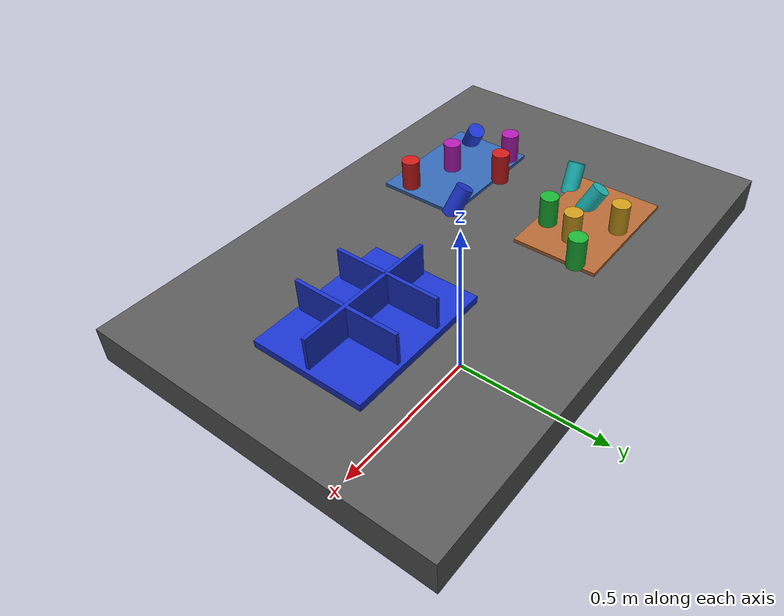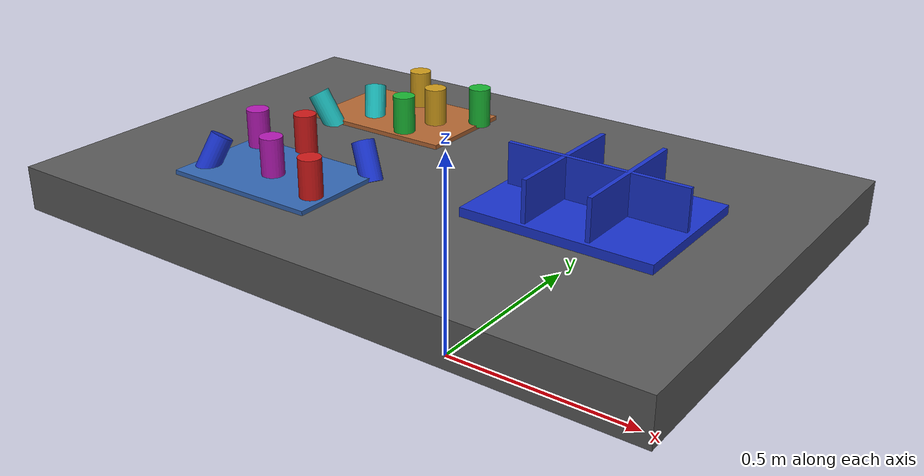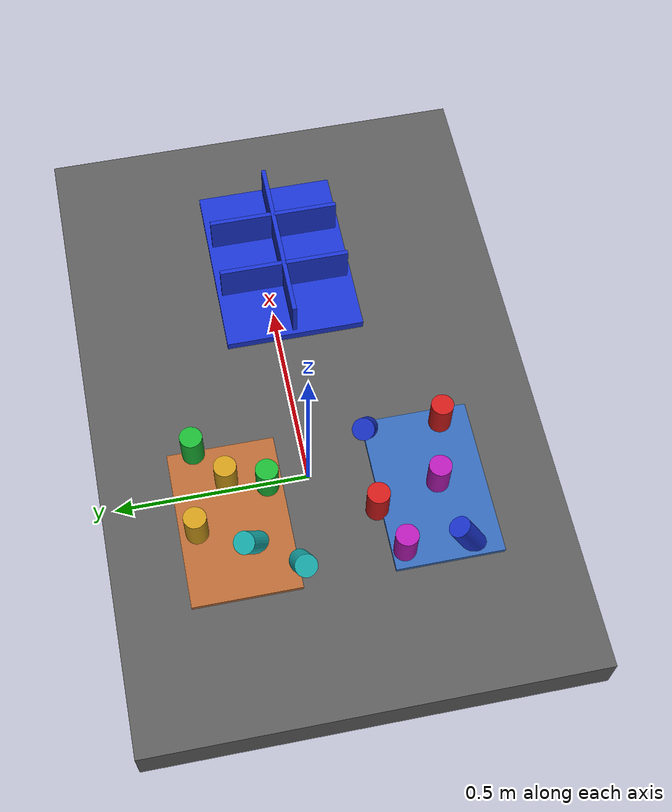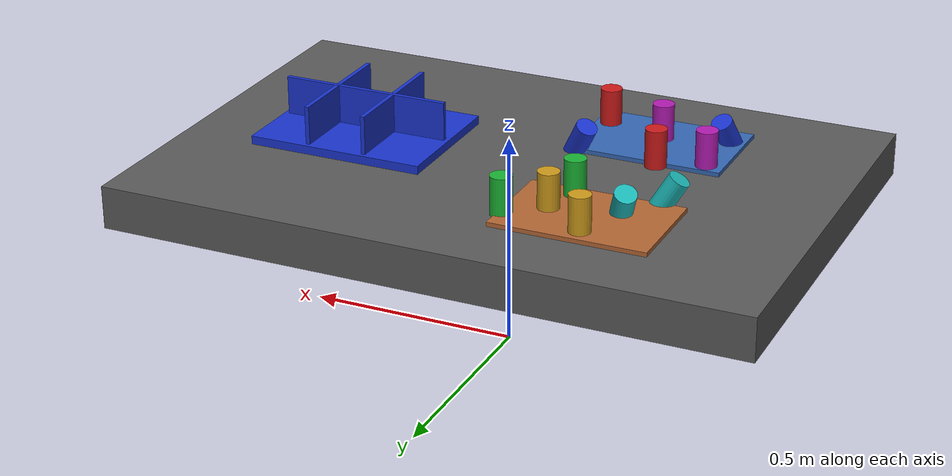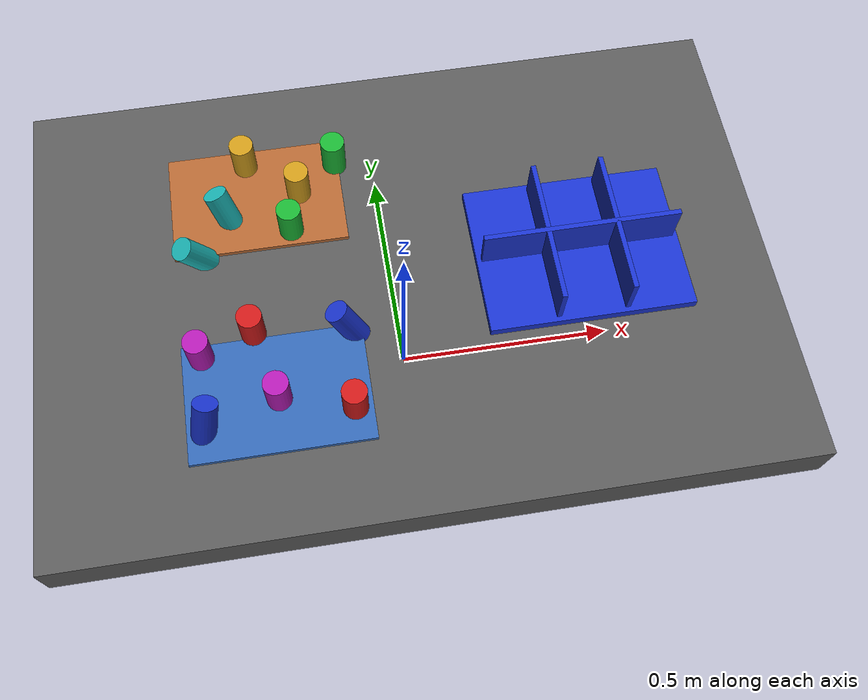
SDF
<?xml version="1.0" ?>
<sdf version="1.9">
  <!-- Standalone M1B scene.  The controller-backed Panda is spawned by the
       existing launch path; this file never alters the frozen M1A cube world. -->
  <world name="industrial_cylinder_v1">
    <physics name="bullet" type="bullet"><max_step_size>0.001</max_step_size><real_time_factor>1.0</real_time_factor></physics>
    <plugin name="gz::sim::systems::Physics" filename="gz-sim-physics-system"><engine><filename>gz-physics-bullet-featherstone-plugin</filename></engine></plugin>
    <plugin name="gz::sim::systems::UserCommands" filename="gz-sim-user-commands-system"/>
    <plugin name="gz::sim::systems::SceneBroadcaster" filename="gz-sim-scene-broadcaster-system"/>
    <plugin name="gz::sim::systems::Sensors" filename="gz-sim-sensors-system"><render_engine>ogre2</render_engine></plugin>
    <gravity>0 0 -9.81</gravity>
    <light type="directional" name="industrial_light"><pose>0 0 5 0 0 0</pose><direction>-0.3 0.2 -0.9</direction><diffuse>0.9 0.9 0.9 1</diffuse></light>
    <model name="industrial_work_table"><static>true</static><link name="link"><pose>0 0 0.4 0 0 0</pose><collision name="collision"><geometry><box><size>1.5 1.0 0.1</size></box></geometry></collision><visual name="visual"><geometry><box><size>1.5 1.0 0.1</size></box></geometry><material><diffuse>0.35 0.35 0.35 1</diffuse></material></visual></link></model>
    <model name="camera_fixture"><static>true</static><link name="camera_rgbd"><pose>-0.80 -0.80 1.40 0 0.77 0.93</pose><sensor name="front_rgbd" type="rgbd_camera"><always_on>1</always_on><update_rate>15</update_rate><topic>/xh/camera/rgbd</topic><camera><horizontal_fov>1.047</horizontal_fov><image><width>640</width><height>480</height><format>R8G8B8</format></image><clip><near>0.1</near><far>4.0</far></clip></camera></sensor></link></model>
    <model name="incoming_zone_a"><static>true</static><link name="link"><pose>-0.28 -0.22 0.455 0 0 0</pose><visual name="visual"><geometry><box><size>0.36 0.24 0.01</size></box></geometry><material><diffuse>0.2 0.4 0.7 1</diffuse></material></visual></link></model>
    <model name="incoming_zone_b"><static>true</static><link name="link"><pose>-0.28 0.22 0.455 0 0 0</pose><visual name="visual"><geometry><box><size>0.36 0.24 0.01</size></box></geometry><material><diffuse>0.7 0.4 0.2 1</diffuse></material></visual></link></model>
    <!-- M1B_RANDOM_PARTS_BEGIN -->
    <model name="cylinder_01"><pose>-0.3144 -0.0904 0.5000 0.0000 0.0000 1.1695</pose><link name="link"><inertial><mass>0.06</mass></inertial><collision name="collision"><geometry><cylinder><radius>0.025</radius><length>0.09</length></cylinder></geometry></collision><visual name="visual"><geometry><cylinder><radius>0.025</radius><length>0.09</length></cylinder></geometry><material><diffuse>0.800 0.100 0.100 1</diffuse><specular>0.15 0.15 0.15 1</specular></material></visual></link></model>
    <model name="cylinder_02"><pose>-0.2149 0.1330 0.5000 3.1416 0.0000 2.2886</pose><link name="link"><inertial><mass>0.06</mass></inertial><collision name="collision"><geometry><cylinder><radius>0.025</radius><length>0.09</length></cylinder></geometry></collision><visual name="visual"><geometry><cylinder><radius>0.025</radius><length>0.09</length></cylinder></geometry><material><diffuse>0.100 0.700 0.200 1</diffuse><specular>0.15 0.15 0.15 1</specular></material></visual></link></model>
    <model name="cylinder_03"><pose>-0.4218 -0.2654 0.4800 0.4500 -0.3000 -2.9931</pose><link name="link"><inertial><mass>0.06</mass></inertial><collision name="collision"><geometry><cylinder><radius>0.025</radius><length>0.09</length></cylinder></geometry></collision><visual name="visual"><geometry><cylinder><radius>0.025</radius><length>0.09</length></cylinder></geometry><material><diffuse>0.100 0.200 0.800 1</diffuse><specular>0.15 0.15 0.15 1</specular></material></visual></link></model>
    <model name="cylinder_04"><pose>-0.2958 0.3014 0.5000 0.0000 0.0000 1.7869</pose><link name="link"><inertial><mass>0.06</mass></inertial><collision name="collision"><geometry><cylinder><radius>0.025</radius><length>0.09</length></cylinder></geometry></collision><visual name="visual"><geometry><cylinder><radius>0.025</radius><length>0.09</length></cylinder></geometry><material><diffuse>0.800 0.600 0.100 1</diffuse><specular>0.15 0.15 0.15 1</specular></material></visual></link></model>
    <model name="cylinder_05"><pose>-0.2775 -0.2341 0.5000 3.1416 0.0000 2.0502</pose><link name="link"><inertial><mass>0.06</mass></inertial><collision name="collision"><geometry><cylinder><radius>0.025</radius><length>0.09</length></cylinder></geometry></collision><visual name="visual"><geometry><cylinder><radius>0.025</radius><length>0.09</length></cylinder></geometry><material><diffuse>0.700 0.100 0.700 1</diffuse><specular>0.15 0.15 0.15 1</specular></material></visual></link></model>
    <model name="cylinder_06"><pose>-0.3474 0.1900 0.4800 0.4500 -0.3000 -1.9681</pose><link name="link"><inertial><mass>0.06</mass></inertial><collision name="collision"><geometry><cylinder><radius>0.025</radius><length>0.09</length></cylinder></geometry></collision><visual name="visual"><geometry><cylinder><radius>0.025</radius><length>0.09</length></cylinder></geometry><material><diffuse>0.100 0.700 0.700 1</diffuse><specular>0.15 0.15 0.15 1</specular></material></visual></link></model>
    <model name="cylinder_07"><pose>-0.1348 -0.2732 0.5000 0.0000 0.0000 -1.7645</pose><link name="link"><inertial><mass>0.06</mass></inertial><collision name="collision"><geometry><cylinder><radius>0.025</radius><length>0.09</length></cylinder></geometry></collision><visual name="visual"><geometry><cylinder><radius>0.025</radius><length>0.09</length></cylinder></geometry><material><diffuse>0.800 0.100 0.100 1</diffuse><specular>0.15 0.15 0.15 1</specular></material></visual></link></model>
    <model name="cylinder_08"><pose>-0.1075 0.2807 0.5000 3.1416 0.0000 2.3343</pose><link name="link"><inertial><mass>0.06</mass></inertial><collision name="collision"><geometry><cylinder><radius>0.025</radius><length>0.09</length></cylinder></geometry></collision><visual name="visual"><geometry><cylinder><radius>0.025</radius><length>0.09</length></cylinder></geometry><material><diffuse>0.100 0.700 0.200 1</diffuse><specular>0.15 0.15 0.15 1</specular></material></visual></link></model>
    <model name="cylinder_09"><pose>-0.1278 -0.1045 0.4800 0.4500 -0.3000 -1.5174</pose><link name="link"><inertial><mass>0.06</mass></inertial><collision name="collision"><geometry><cylinder><radius>0.025</radius><length>0.09</length></cylinder></geometry></collision><visual name="visual"><geometry><cylinder><radius>0.025</radius><length>0.09</length></cylinder></geometry><material><diffuse>0.100 0.200 0.800 1</diffuse><specular>0.15 0.15 0.15 1</specular></material></visual></link></model>
    <model name="cylinder_10"><pose>-0.1902 0.2198 0.5000 0.0000 0.0000 0.7151</pose><link name="link"><inertial><mass>0.06</mass></inertial><collision name="collision"><geometry><cylinder><radius>0.025</radius><length>0.09</length></cylinder></geometry></collision><visual name="visual"><geometry><cylinder><radius>0.025</radius><length>0.09</length></cylinder></geometry><material><diffuse>0.800 0.600 0.100 1</diffuse><specular>0.15 0.15 0.15 1</specular></material></visual></link></model>
    <model name="cylinder_11"><pose>-0.4198 -0.1280 0.5000 3.1416 0.0000 -3.0486</pose><link name="link"><inertial><mass>0.06</mass></inertial><collision name="collision"><geometry><cylinder><radius>0.025</radius><length>0.09</length></cylinder></geometry></collision><visual name="visual"><geometry><cylinder><radius>0.025</radius><length>0.09</length></cylinder></geometry><material><diffuse>0.700 0.100 0.700 1</diffuse><specular>0.15 0.15 0.15 1</specular></material></visual></link></model>
    <model name="cylinder_12"><pose>-0.4138 0.0935 0.4800 0.4500 -0.3000 -0.8714</pose><link name="link"><inertial><mass>0.06</mass></inertial><collision name="collision"><geometry><cylinder><radius>0.025</radius><length>0.09</length></cylinder></geometry></collision><visual name="visual"><geometry><cylinder><radius>0.025</radius><length>0.09</length></cylinder></geometry><material><diffuse>0.100 0.700 0.700 1</diffuse><specular>0.15 0.15 0.15 1</specular></material></visual></link></model>
    <!-- M1B_RANDOM_PARTS_END -->
    <model name="blue_partition_bin"><static>true</static><pose>0.36 0 0.45 0 0 0</pose><link name="link"><collision name="floor"><pose>0 0 0.01 0 0 0</pose><geometry><box><size>0.42 0.32 0.02</size></box></geometry></collision><visual name="floor_visual"><pose>0 0 0.01 0 0 0</pose><geometry><box><size>0.42 0.32 0.02</size></box></geometry><material><diffuse>0.1 0.2 0.8 1</diffuse></material></visual><visual name="row_divider"><pose>0 0 0.06 0 0 0</pose><geometry><box><size>0.40 0.01 0.10</size></box></geometry><material><diffuse>0.1 0.2 0.8 1</diffuse></material></visual><visual name="col_divider_a"><pose>-0.07 0 0.06 0 0 0</pose><geometry><box><size>0.01 0.30 0.10</size></box></geometry><material><diffuse>0.1 0.2 0.8 1</diffuse></material></visual><visual name="col_divider_b"><pose>0.07 0 0.06 0 0 0</pose><geometry><box><size>0.01 0.30 0.10</size></box></geometry><material><diffuse>0.1 0.2 0.8 1</diffuse></material></visual></link></model>
    <!-- Reserved only: second table, bin transport corridor, stackable-bin
         collision volume, and second arm mounting namespace. -->
  </world>
</sdf>
